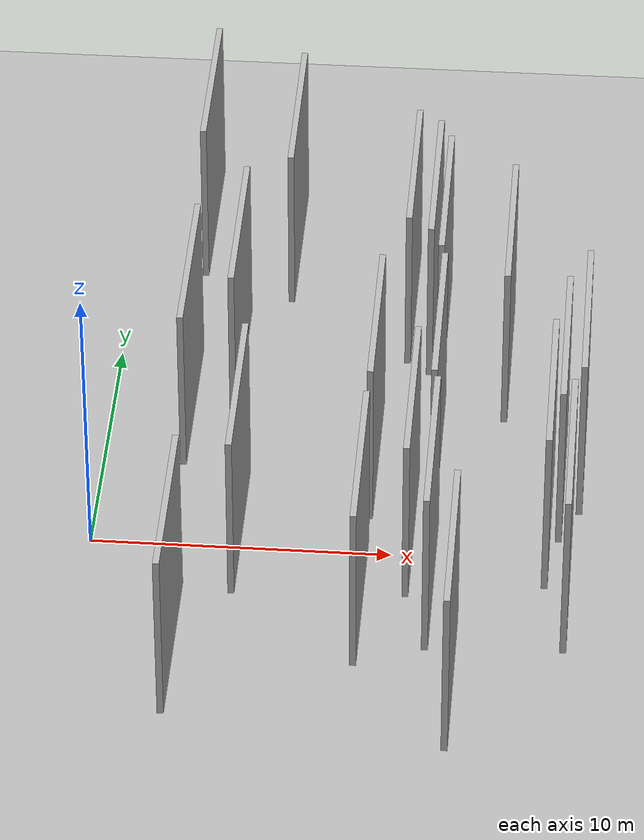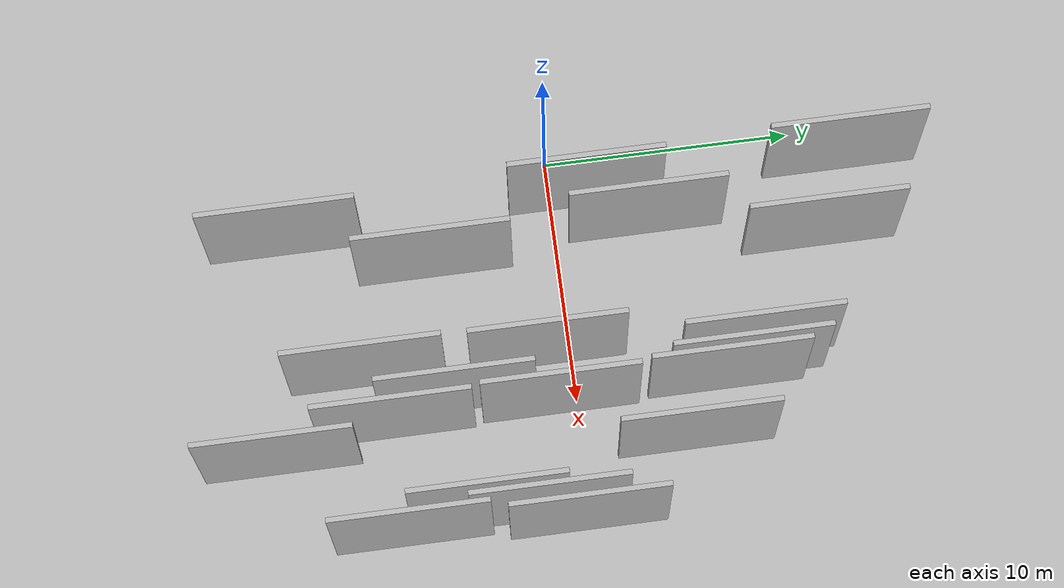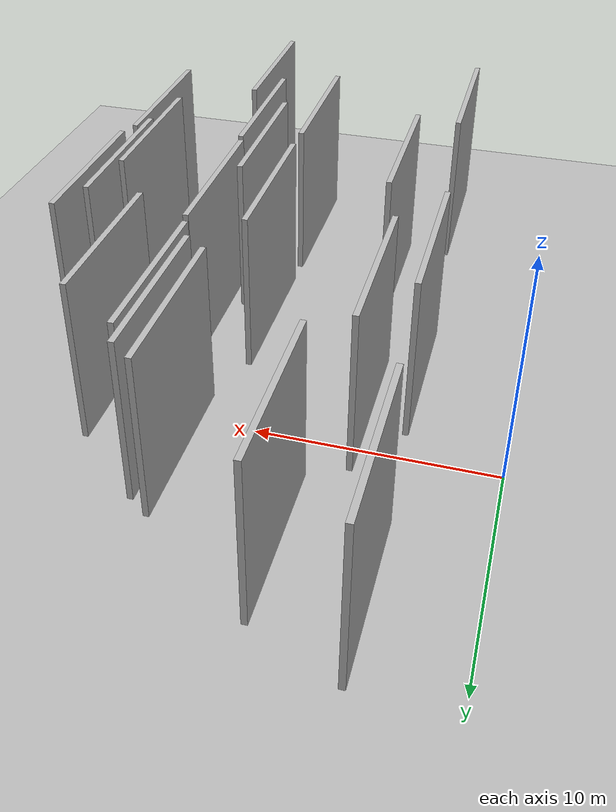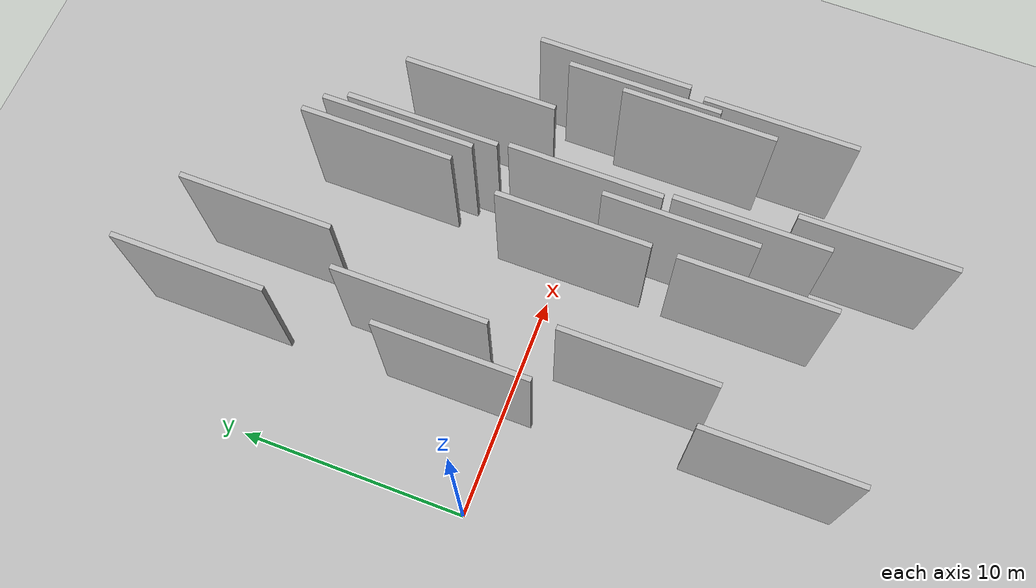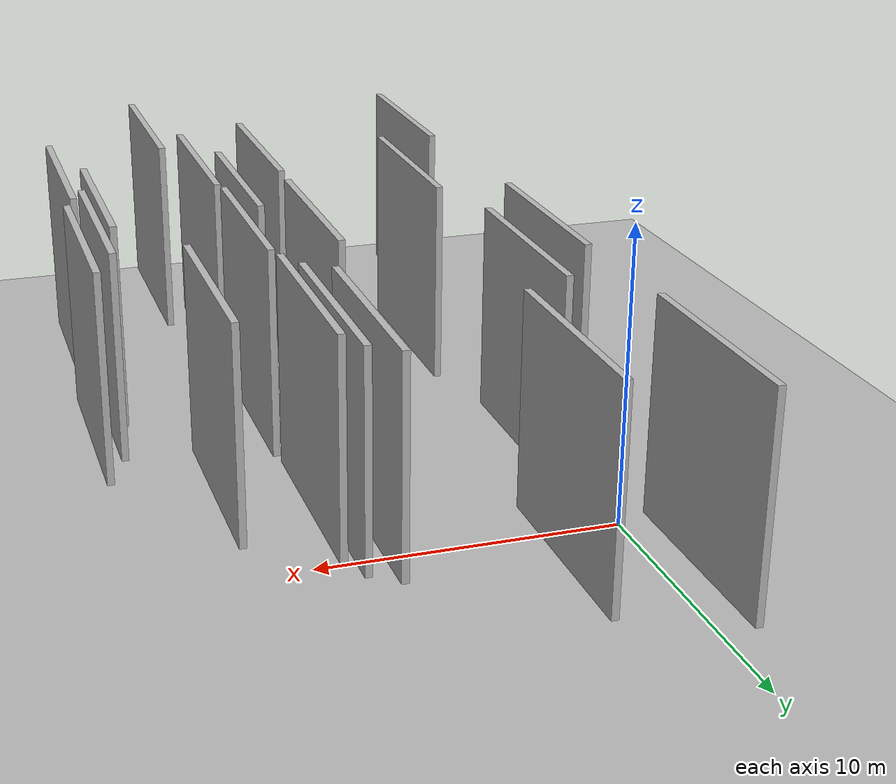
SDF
<?xml version="1.0" encoding="utf-8"?>

<sdf version="1.6">

   <world name="default">

      <gui fullscreen="0">

         <camera name="user_camera">

            <pose>-15 0 4.57585 0 0 0</pose>

            <view_controller>orbit</view_controller>

         </camera>

      </gui>

      <scene>

         <sky>

           <clouds>

             <speed>12</speed>

           </clouds>

         </sky>

         <ambient>0.4 0.4 0.4 1</ambient>

         <background>0.7 0.7 0.7 1</background>

         <shadows>1</shadows>

      </scene>

      <gravity>0 0 -9.8066</gravity>

      <magnetic_field>6e-06 2.3e-05 -4.2e-05</magnetic_field>

      <physics default="0" name="default_physics" type="ode">

         <ode>

            <solver>

               <type>quick</type>

               <iters>10</iters>

               <sor>1.0</sor>

               <use_dynamic_moi_rescaling>0</use_dynamic_moi_rescaling>

            </solver>

            <constraints>

               <cfm>0</cfm>

               <erp>0.2</erp>

               <contact_max_correcting_vel>100</contact_max_correcting_vel>

               <contact_surface_layer>0.001</contact_surface_layer>

            </constraints>

         </ode>

         <max_step_size>0.004</max_step_size>

         <real_time_factor>1</real_time_factor>

         <real_time_update_rate>250</real_time_update_rate>

      </physics>

      <light name="sun" type="directional">

         <cast_shadows>1</cast_shadows>

         <pose>0 0 10 0 0 0</pose>

         <diffuse>0.8 0.8 0.8 1</diffuse>

         <specular>0.2 0.2 0.2 1</specular>

         <attenuation>

            <range>1000</range>

            <constant>0.9</constant>

            <linear>0.01</linear>

            <quadratic>0.001</quadratic>

         </attenuation>

         <direction>-0.5 0.1 -0.9</direction>

      </light>

      <include>

         <name>ground_plane_1</name>

         <uri>model://HANNAS_ground_plane</uri>

         <pose>0 0 0  0 0 0</pose>

      </include>

      <include>

         <name>ground_plane_2</name>

         <uri>model://HANNAS_ground_plane</uri>

         <pose>100 0 0  0 0 0</pose>

      </include>

      <model name="HANNAS_wall_1">

         <static>1</static>

         <pose frame="">11.3788 5.5534 5.0 0.000000 0.000000 1.570796</pose>

         <link name="link">

            <pose frame="">0 0 3.00 0 0 0</pose>

            <collision name="collision">

               <geometry>

                  <box>

                     <size>6.00 0.2 6.00</size>

                  </box>

               </geometry>

               <max_contacts>10</max_contacts>

               <surface>

                  <contact>

                     <ode/>

                  </contact>

                  <bounce/>

                  <friction>

                     <torsional>

                        <ode/>

                     </torsional>

                     <ode/>

                  </friction>

               </surface>

            </collision>

            <visual name="visual">

               <cast_shadows>0</cast_shadows>

               <geometry>

                  <box>

                     <size>6.00 0.2 6.00</size>

                  </box>

               </geometry>

               <material>

                  <script>

                     <uri>model://HANNAS_wall/materials/scripts</uri>

                     <uri>model://HANNAS_wall/materials/textures</uri>

                     <name>vrc/HANNAS_wall</name>

                  </script>

               </material>

            </visual>

            <self_collide>0</self_collide>

            <enable_wind>0</enable_wind>

            <kinematic>0</kinematic>

         </link>

      </model>

      <model name="HANNAS_wall_2">

         <static>1</static>

         <pose frame="">15.1914 -3.9984 5.0 0.000000 0.000000 1.570796</pose>

         <link name="link">

            <pose frame="">0 0 3.00 0 0 0</pose>

            <collision name="collision">

               <geometry>

                  <box>

                     <size>6.00 0.2 6.00</size>

                  </box>

               </geometry>

               <max_contacts>10</max_contacts>

               <surface>

                  <contact>

                     <ode/>

                  </contact>

                  <bounce/>

                  <friction>

                     <torsional>

                        <ode/>

                     </torsional>

                     <ode/>

                  </friction>

               </surface>

            </collision>

            <visual name="visual">

               <cast_shadows>0</cast_shadows>

               <geometry>

                  <box>

                     <size>6.00 0.2 6.00</size>

                  </box>

               </geometry>

               <material>

                  <script>

                     <uri>model://HANNAS_wall/materials/scripts</uri>

                     <uri>model://HANNAS_wall/materials/textures</uri>

                     <name>vrc/HANNAS_wall</name>

                  </script>

               </material>

            </visual>

            <self_collide>0</self_collide>

            <enable_wind>0</enable_wind>

            <kinematic>0</kinematic>

         </link>

      </model>

      <model name="HANNAS_wall_3">

         <static>1</static>

         <pose frame="">9.4826 -7.9947 5.0 0.000000 0.000000 1.570796</pose>

         <link name="link">

            <pose frame="">0 0 3.00 0 0 0</pose>

            <collision name="collision">

               <geometry>

                  <box>

                     <size>6.00 0.2 6.00</size>

                  </box>

               </geometry>

               <max_contacts>10</max_contacts>

               <surface>

                  <contact>

                     <ode/>

                  </contact>

                  <bounce/>

                  <friction>

                     <torsional>

                        <ode/>

                     </torsional>

                     <ode/>

                  </friction>

               </surface>

            </collision>

            <visual name="visual">

               <cast_shadows>0</cast_shadows>

               <geometry>

                  <box>

                     <size>6.00 0.2 6.00</size>

                  </box>

               </geometry>

               <material>

                  <script>

                     <uri>model://HANNAS_wall/materials/scripts</uri>

                     <uri>model://HANNAS_wall/materials/textures</uri>

                     <name>vrc/HANNAS_wall</name>

                  </script>

               </material>

            </visual>

            <self_collide>0</self_collide>

            <enable_wind>0</enable_wind>

            <kinematic>0</kinematic>

         </link>

      </model>

      <model name="HANNAS_wall_4">

         <static>1</static>

         <pose frame="">9.5295 -1.0471 5.0 0.000000 0.000000 1.570796</pose>

         <link name="link">

            <pose frame="">0 0 3.00 0 0 0</pose>

            <collision name="collision">

               <geometry>

                  <box>

                     <size>6.00 0.2 6.00</size>

                  </box>

               </geometry>

               <max_contacts>10</max_contacts>

               <surface>

                  <contact>

                     <ode/>

                  </contact>

                  <bounce/>

                  <friction>

                     <torsional>

                        <ode/>

                     </torsional>

                     <ode/>

                  </friction>

               </surface>

            </collision>

            <visual name="visual">

               <cast_shadows>0</cast_shadows>

               <geometry>

                  <box>

                     <size>6.00 0.2 6.00</size>

                  </box>

               </geometry>

               <material>

                  <script>

                     <uri>model://HANNAS_wall/materials/scripts</uri>

                     <uri>model://HANNAS_wall/materials/textures</uri>

                     <name>vrc/HANNAS_wall</name>

                  </script>

               </material>

            </visual>

            <self_collide>0</self_collide>

            <enable_wind>0</enable_wind>

            <kinematic>0</kinematic>

         </link>

      </model>

      <model name="HANNAS_wall_5">

         <static>1</static>

         <pose frame="">4.7895 3.3583 5.0 0.000000 0.000000 1.570796</pose>

         <link name="link">

            <pose frame="">0 0 3.00 0 0 0</pose>

            <collision name="collision">

               <geometry>

                  <box>

                     <size>6.00 0.2 6.00</size>

                  </box>

               </geometry>

               <max_contacts>10</max_contacts>

               <surface>

                  <contact>

                     <ode/>

                  </contact>

                  <bounce/>

                  <friction>

                     <torsional>

                        <ode/>

                     </torsional>

                     <ode/>

                  </friction>

               </surface>

            </collision>

            <visual name="visual">

               <cast_shadows>0</cast_shadows>

               <geometry>

                  <box>

                     <size>6.00 0.2 6.00</size>

                  </box>

               </geometry>

               <material>

                  <script>

                     <uri>model://HANNAS_wall/materials/scripts</uri>

                     <uri>model://HANNAS_wall/materials/textures</uri>

                     <name>vrc/HANNAS_wall</name>

                  </script>

               </material>

            </visual>

            <self_collide>0</self_collide>

            <enable_wind>0</enable_wind>

            <kinematic>0</kinematic>

         </link>

      </model>

      <model name="HANNAS_wall_6">

         <static>1</static>

         <pose frame="">15.5508 -1.7417 5.0 0.000000 0.000000 1.570796</pose>

         <link name="link">

            <pose frame="">0 0 3.00 0 0 0</pose>

            <collision name="collision">

               <geometry>

                  <box>

                     <size>6.00 0.2 6.00</size>

                  </box>

               </geometry>

               <max_contacts>10</max_contacts>

               <surface>

                  <contact>

                     <ode/>

                  </contact>

                  <bounce/>

                  <friction>

                     <torsional>

                        <ode/>

                     </torsional>

                     <ode/>

                  </friction>

               </surface>

            </collision>

            <visual name="visual">

               <cast_shadows>0</cast_shadows>

               <geometry>

                  <box>

                     <size>6.00 0.2 6.00</size>

                  </box>

               </geometry>

               <material>

                  <script>

                     <uri>model://HANNAS_wall/materials/scripts</uri>

                     <uri>model://HANNAS_wall/materials/textures</uri>

                     <name>vrc/HANNAS_wall</name>

                  </script>

               </material>

            </visual>

            <self_collide>0</self_collide>

            <enable_wind>0</enable_wind>

            <kinematic>0</kinematic>

         </link>

      </model>

      <model name="HANNAS_wall_7">

         <static>1</static>

         <pose frame="">5.4618 -4.9224 5.0 0.000000 0.000000 1.570796</pose>

         <link name="link">

            <pose frame="">0 0 3.00 0 0 0</pose>

            <collision name="collision">

               <geometry>

                  <box>

                     <size>6.00 0.2 6.00</size>

                  </box>

               </geometry>

               <max_contacts>10</max_contacts>

               <surface>

                  <contact>

                     <ode/>

                  </contact>

                  <bounce/>

                  <friction>

                     <torsional>

                        <ode/>

                     </torsional>

                     <ode/>

                  </friction>

               </surface>

            </collision>

            <visual name="visual">

               <cast_shadows>0</cast_shadows>

               <geometry>

                  <box>

                     <size>6.00 0.2 6.00</size>

                  </box>

               </geometry>

               <material>

                  <script>

                     <uri>model://HANNAS_wall/materials/scripts</uri>

                     <uri>model://HANNAS_wall/materials/textures</uri>

                     <name>vrc/HANNAS_wall</name>

                  </script>

               </material>

            </visual>

            <self_collide>0</self_collide>

            <enable_wind>0</enable_wind>

            <kinematic>0</kinematic>

         </link>

      </model>

      <model name="HANNAS_wall_8">

         <static>1</static>

         <pose frame="">3.8223 -10.5559 5.0 0.000000 0.000000 1.570796</pose>

         <link name="link">

            <pose frame="">0 0 3.00 0 0 0</pose>

            <collision name="collision">

               <geometry>

                  <box>

                     <size>6.00 0.2 6.00</size>

                  </box>

               </geometry>

               <max_contacts>10</max_contacts>

               <surface>

                  <contact>

                     <ode/>

                  </contact>

                  <bounce/>

                  <friction>

                     <torsional>

                        <ode/>

                     </torsional>

                     <ode/>

                  </friction>

               </surface>

            </collision>

            <visual name="visual">

               <cast_shadows>0</cast_shadows>

               <geometry>

                  <box>

                     <size>6.00 0.2 6.00</size>

                  </box>

               </geometry>

               <material>

                  <script>

                     <uri>model://HANNAS_wall/materials/scripts</uri>

                     <uri>model://HANNAS_wall/materials/textures</uri>

                     <name>vrc/HANNAS_wall</name>

                  </script>

               </material>

            </visual>

            <self_collide>0</self_collide>

            <enable_wind>0</enable_wind>

            <kinematic>0</kinematic>

         </link>

      </model>

      <model name="HANNAS_wall_9">

         <static>1</static>

         <pose frame="">3.3732 1.2112 5.0 0.000000 0.000000 1.570796</pose>

         <link name="link">

            <pose frame="">0 0 3.00 0 0 0</pose>

            <collision name="collision">

               <geometry>

                  <box>

                     <size>6.00 0.2 6.00</size>

                  </box>

               </geometry>

               <max_contacts>10</max_contacts>

               <surface>

                  <contact>

                     <ode/>

                  </contact>

                  <bounce/>

                  <friction>

                     <torsional>

                        <ode/>

                     </torsional>

                     <ode/>

                  </friction>

               </surface>

            </collision>

            <visual name="visual">

               <cast_shadows>0</cast_shadows>

               <geometry>

                  <box>

                     <size>6.00 0.2 6.00</size>

                  </box>

               </geometry>

               <material>

                  <script>

                     <uri>model://HANNAS_wall/materials/scripts</uri>

                     <uri>model://HANNAS_wall/materials/textures</uri>

                     <name>vrc/HANNAS_wall</name>

                  </script>

               </material>

            </visual>

            <self_collide>0</self_collide>

            <enable_wind>0</enable_wind>

            <kinematic>0</kinematic>

         </link>

      </model>

      <model name="HANNAS_wall_10">

         <static>1</static>

         <pose frame="">10.8827 -4.6897 5.0 0.000000 0.000000 1.570796</pose>

         <link name="link">

            <pose frame="">0 0 3.00 0 0 0</pose>

            <collision name="collision">

               <geometry>

                  <box>

                     <size>6.00 0.2 6.00</size>

                  </box>

               </geometry>

               <max_contacts>10</max_contacts>

               <surface>

                  <contact>

                     <ode/>

                  </contact>

                  <bounce/>

                  <friction>

                     <torsional>

                        <ode/>

                     </torsional>

                     <ode/>

                  </friction>

               </surface>

            </collision>

            <visual name="visual">

               <cast_shadows>0</cast_shadows>

               <geometry>

                  <box>

                     <size>6.00 0.2 6.00</size>

                  </box>

               </geometry>

               <material>

                  <script>

                     <uri>model://HANNAS_wall/materials/scripts</uri>

                     <uri>model://HANNAS_wall/materials/textures</uri>

                     <name>vrc/HANNAS_wall</name>

                  </script>

               </material>

            </visual>

            <self_collide>0</self_collide>

            <enable_wind>0</enable_wind>

            <kinematic>0</kinematic>

         </link>

      </model>

      <model name="HANNAS_wall_11">

         <static>1</static>

         <pose frame="">13.5632 4.1065 5.0 0.000000 0.000000 1.570796</pose>

         <link name="link">

            <pose frame="">0 0 3.00 0 0 0</pose>

            <collision name="collision">

               <geometry>

                  <box>

                     <size>6.00 0.2 6.00</size>

                  </box>

               </geometry>

               <max_contacts>10</max_contacts>

               <surface>

                  <contact>

                     <ode/>

                  </contact>

                  <bounce/>

                  <friction>

                     <torsional>

                        <ode/>

                     </torsional>

                     <ode/>

                  </friction>

               </surface>

            </collision>

            <visual name="visual">

               <cast_shadows>0</cast_shadows>

               <geometry>

                  <box>

                     <size>6.00 0.2 6.00</size>

                  </box>

               </geometry>

               <material>

                  <script>

                     <uri>model://HANNAS_wall/materials/scripts</uri>

                     <uri>model://HANNAS_wall/materials/textures</uri>

                     <name>vrc/HANNAS_wall</name>

                  </script>

               </material>

            </visual>

            <self_collide>0</self_collide>

            <enable_wind>0</enable_wind>

            <kinematic>0</kinematic>

         </link>

      </model>

      <model name="HANNAS_wall_12">

         <static>1</static>

         <pose frame="">16.1577 -0.3563 5.0 0.000000 0.000000 1.570796</pose>

         <link name="link">

            <pose frame="">0 0 3.00 0 0 0</pose>

            <collision name="collision">

               <geometry>

                  <box>

                     <size>6.00 0.2 6.00</size>

                  </box>

               </geometry>

               <max_contacts>10</max_contacts>

               <surface>

                  <contact>

                     <ode/>

                  </contact>

                  <bounce/>

                  <friction>

                     <torsional>

                        <ode/>

                     </torsional>

                     <ode/>

                  </friction>

               </surface>

            </collision>

            <visual name="visual">

               <cast_shadows>0</cast_shadows>

               <geometry>

                  <box>

                     <size>6.00 0.2 6.00</size>

                  </box>

               </geometry>

               <material>

                  <script>

                     <uri>model://HANNAS_wall/materials/scripts</uri>

                     <uri>model://HANNAS_wall/materials/textures</uri>

                     <name>vrc/HANNAS_wall</name>

                  </script>

               </material>

            </visual>

            <self_collide>0</self_collide>

            <enable_wind>0</enable_wind>

            <kinematic>0</kinematic>

         </link>

      </model>

      <model name="HANNAS_wall_13">

         <static>1</static>

         <pose frame="">10.2532 6.9409 5.0 0.000000 0.000000 1.570796</pose>

         <link name="link">

            <pose frame="">0 0 3.00 0 0 0</pose>

            <collision name="collision">

               <geometry>

                  <box>

                     <size>6.00 0.2 6.00</size>

                  </box>

               </geometry>

               <max_contacts>10</max_contacts>

               <surface>

                  <contact>

                     <ode/>

                  </contact>

                  <bounce/>

                  <friction>

                     <torsional>

                        <ode/>

                     </torsional>

                     <ode/>

                  </friction>

               </surface>

            </collision>

            <visual name="visual">

               <cast_shadows>0</cast_shadows>

               <geometry>

                  <box>

                     <size>6.00 0.2 6.00</size>

                  </box>

               </geometry>

               <material>

                  <script>

                     <uri>model://HANNAS_wall/materials/scripts</uri>

                     <uri>model://HANNAS_wall/materials/textures</uri>

                     <name>vrc/HANNAS_wall</name>

                  </script>

               </material>

            </visual>

            <self_collide>0</self_collide>

            <enable_wind>0</enable_wind>

            <kinematic>0</kinematic>

         </link>

      </model>

      <model name="HANNAS_wall_14">

         <static>1</static>

         <pose frame="">10.9964 6.3959 5.0 0.000000 0.000000 1.570796</pose>

         <link name="link">

            <pose frame="">0 0 3.00 0 0 0</pose>

            <collision name="collision">

               <geometry>

                  <box>

                     <size>6.00 0.2 6.00</size>

                  </box>

               </geometry>

               <max_contacts>10</max_contacts>

               <surface>

                  <contact>

                     <ode/>

                  </contact>

                  <bounce/>

                  <friction>

                     <torsional>

                        <ode/>

                     </torsional>

                     <ode/>

                  </friction>

               </surface>

            </collision>

            <visual name="visual">

               <cast_shadows>0</cast_shadows>

               <geometry>

                  <box>

                     <size>6.00 0.2 6.00</size>

                  </box>

               </geometry>

               <material>

                  <script>

                     <uri>model://HANNAS_wall/materials/scripts</uri>

                     <uri>model://HANNAS_wall/materials/textures</uri>

                     <name>vrc/HANNAS_wall</name>

                  </script>

               </material>

            </visual>

            <self_collide>0</self_collide>

            <enable_wind>0</enable_wind>

            <kinematic>0</kinematic>

         </link>

      </model>

      <model name="HANNAS_wall_15">

         <static>1</static>

         <pose frame="">15.8823 -6.9526 5.0 0.000000 0.000000 1.570796</pose>

         <link name="link">

            <pose frame="">0 0 3.00 0 0 0</pose>

            <collision name="collision">

               <geometry>

                  <box>

                     <size>6.00 0.2 6.00</size>

                  </box>

               </geometry>

               <max_contacts>10</max_contacts>

               <surface>

                  <contact>

                     <ode/>

                  </contact>

                  <bounce/>

                  <friction>

                     <torsional>

                        <ode/>

                     </torsional>

                     <ode/>

                  </friction>

               </surface>

            </collision>

            <visual name="visual">

               <cast_shadows>0</cast_shadows>

               <geometry>

                  <box>

                     <size>6.00 0.2 6.00</size>

                  </box>

               </geometry>

               <material>

                  <script>

                     <uri>model://HANNAS_wall/materials/scripts</uri>

                     <uri>model://HANNAS_wall/materials/textures</uri>

                     <name>vrc/HANNAS_wall</name>

                  </script>

               </material>

            </visual>

            <self_collide>0</self_collide>

            <enable_wind>0</enable_wind>

            <kinematic>0</kinematic>

         </link>

      </model>

      <model name="HANNAS_wall_16">

         <static>1</static>

         <pose frame="">11.5136 -0.8226 5.0 0.000000 0.000000 1.570796</pose>

         <link name="link">

            <pose frame="">0 0 3.00 0 0 0</pose>

            <collision name="collision">

               <geometry>

                  <box>

                     <size>6.00 0.2 6.00</size>

                  </box>

               </geometry>

               <max_contacts>10</max_contacts>

               <surface>

                  <contact>

                     <ode/>

                  </contact>

                  <bounce/>

                  <friction>

                     <torsional>

                        <ode/>

                     </torsional>

                     <ode/>

                  </friction>

               </surface>

            </collision>

            <visual name="visual">

               <cast_shadows>0</cast_shadows>

               <geometry>

                  <box>

                     <size>6.00 0.2 6.00</size>

                  </box>

               </geometry>

               <material>

                  <script>

                     <uri>model://HANNAS_wall/materials/scripts</uri>

                     <uri>model://HANNAS_wall/materials/textures</uri>

                     <name>vrc/HANNAS_wall</name>

                  </script>

               </material>

            </visual>

            <self_collide>0</self_collide>

            <enable_wind>0</enable_wind>

            <kinematic>0</kinematic>

         </link>

      </model>

      <model name="HANNAS_wall_17">

         <static>1</static>

         <pose frame="">11.6338 -7.1258 5.0 0.000000 0.000000 1.570796</pose>

         <link name="link">

            <pose frame="">0 0 3.00 0 0 0</pose>

            <collision name="collision">

               <geometry>

                  <box>

                     <size>6.00 0.2 6.00</size>

                  </box>

               </geometry>

               <max_contacts>10</max_contacts>

               <surface>

                  <contact>

                     <ode/>

                  </contact>

                  <bounce/>

                  <friction>

                     <torsional>

                        <ode/>

                     </torsional>

                     <ode/>

                  </friction>

               </surface>

            </collision>

            <visual name="visual">

               <cast_shadows>0</cast_shadows>

               <geometry>

                  <box>

                     <size>6.00 0.2 6.00</size>

                  </box>

               </geometry>

               <material>

                  <script>

                     <uri>model://HANNAS_wall/materials/scripts</uri>

                     <uri>model://HANNAS_wall/materials/textures</uri>

                     <name>vrc/HANNAS_wall</name>

                  </script>

               </material>

            </visual>

            <self_collide>0</self_collide>

            <enable_wind>0</enable_wind>

            <kinematic>0</kinematic>

         </link>

      </model>

      <model name="HANNAS_wall_18">

         <static>1</static>

         <pose frame="">12.4864 -11.5844 5.0 0.000000 0.000000 1.570796</pose>

         <link name="link">

            <pose frame="">0 0 3.00 0 0 0</pose>

            <collision name="collision">

               <geometry>

                  <box>

                     <size>6.00 0.2 6.00</size>

                  </box>

               </geometry>

               <max_contacts>10</max_contacts>

               <surface>

                  <contact>

                     <ode/>

                  </contact>

                  <bounce/>

                  <friction>

                     <torsional>

                        <ode/>

                     </torsional>

                     <ode/>

                  </friction>

               </surface>

            </collision>

            <visual name="visual">

               <cast_shadows>0</cast_shadows>

               <geometry>

                  <box>

                     <size>6.00 0.2 6.00</size>

                  </box>

               </geometry>

               <material>

                  <script>

                     <uri>model://HANNAS_wall/materials/scripts</uri>

                     <uri>model://HANNAS_wall/materials/textures</uri>

                     <name>vrc/HANNAS_wall</name>

                  </script>

               </material>

            </visual>

            <self_collide>0</self_collide>

            <enable_wind>0</enable_wind>

            <kinematic>0</kinematic>

         </link>

      </model>

      <model name="HANNAS_wall_19">

         <static>1</static>

         <pose frame="">6.1725 9.9472 5.0 0.000000 0.000000 1.570796</pose>

         <link name="link">

            <pose frame="">0 0 3.00 0 0 0</pose>

            <collision name="collision">

               <geometry>

                  <box>

                     <size>6.00 0.2 6.00</size>

                  </box>

               </geometry>

               <max_contacts>10</max_contacts>

               <surface>

                  <contact>

                     <ode/>

                  </contact>

                  <bounce/>

                  <friction>

                     <torsional>

                        <ode/>

                     </torsional>

                     <ode/>

                  </friction>

               </surface>

            </collision>

            <visual name="visual">

               <cast_shadows>0</cast_shadows>

               <geometry>

                  <box>

                     <size>6.00 0.2 6.00</size>

                  </box>

               </geometry>

               <material>

                  <script>

                     <uri>model://HANNAS_wall/materials/scripts</uri>

                     <uri>model://HANNAS_wall/materials/textures</uri>

                     <name>vrc/HANNAS_wall</name>

                  </script>

               </material>

            </visual>

            <self_collide>0</self_collide>

            <enable_wind>0</enable_wind>

            <kinematic>0</kinematic>

         </link>

      </model>

      <model name="HANNAS_wall_20">

         <static>1</static>

         <pose frame="">3.1682 11.1977 5.0 0.000000 0.000000 1.570796</pose>

         <link name="link">

            <pose frame="">0 0 3.00 0 0 0</pose>

            <collision name="collision">

               <geometry>

                  <box>

                     <size>6.00 0.2 6.00</size>

                  </box>

               </geometry>

               <max_contacts>10</max_contacts>

               <surface>

                  <contact>

                     <ode/>

                  </contact>

                  <bounce/>

                  <friction>

                     <torsional>

                        <ode/>

                     </torsional>

                     <ode/>

                  </friction>

               </surface>

            </collision>

            <visual name="visual">

               <cast_shadows>0</cast_shadows>

               <geometry>

                  <box>

                     <size>6.00 0.2 6.00</size>

                  </box>

               </geometry>

               <material>

                  <script>

                     <uri>model://HANNAS_wall/materials/scripts</uri>

                     <uri>model://HANNAS_wall/materials/textures</uri>

                     <name>vrc/HANNAS_wall</name>

                  </script>

               </material>

            </visual>

            <self_collide>0</self_collide>

            <enable_wind>0</enable_wind>

            <kinematic>0</kinematic>

         </link>

      </model>

   </world>

</sdf>

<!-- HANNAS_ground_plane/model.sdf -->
<sdf version="1.4">
<model name="HANNAS_ground_plane">
  <static>true</static>
    <link name="link">
      <collision name="collision">
        <geometry>
          <plane>
            <normal>0 0 1</normal>
            <size>1000 1000</size>
          </plane>
        </geometry>
        <surface>
          <friction>
            <ode>
              <mu>100</mu>
              <mu2>50</mu2>
            </ode>
          </friction>
        </surface>
      </collision>
      <visual name="visual">
        <cast_shadows>false</cast_shadows>
        <geometry>
          <plane>
            <normal>0 0 1</normal>
            <size>1000 1000</size>
          </plane>
        </geometry>
        <material>
          <script>
            <uri>model://HANNAS_ground_plane/materials/scripts/HANNAS_ground_plane.material</uri>
	    <uri>model://HANNAS_ground_plane/materials/textures</uri>
            <name>HANNASGroundPlane/Image</name>
          </script>
        </material>
      </visual>
    </link>
  </model>
</sdf>
